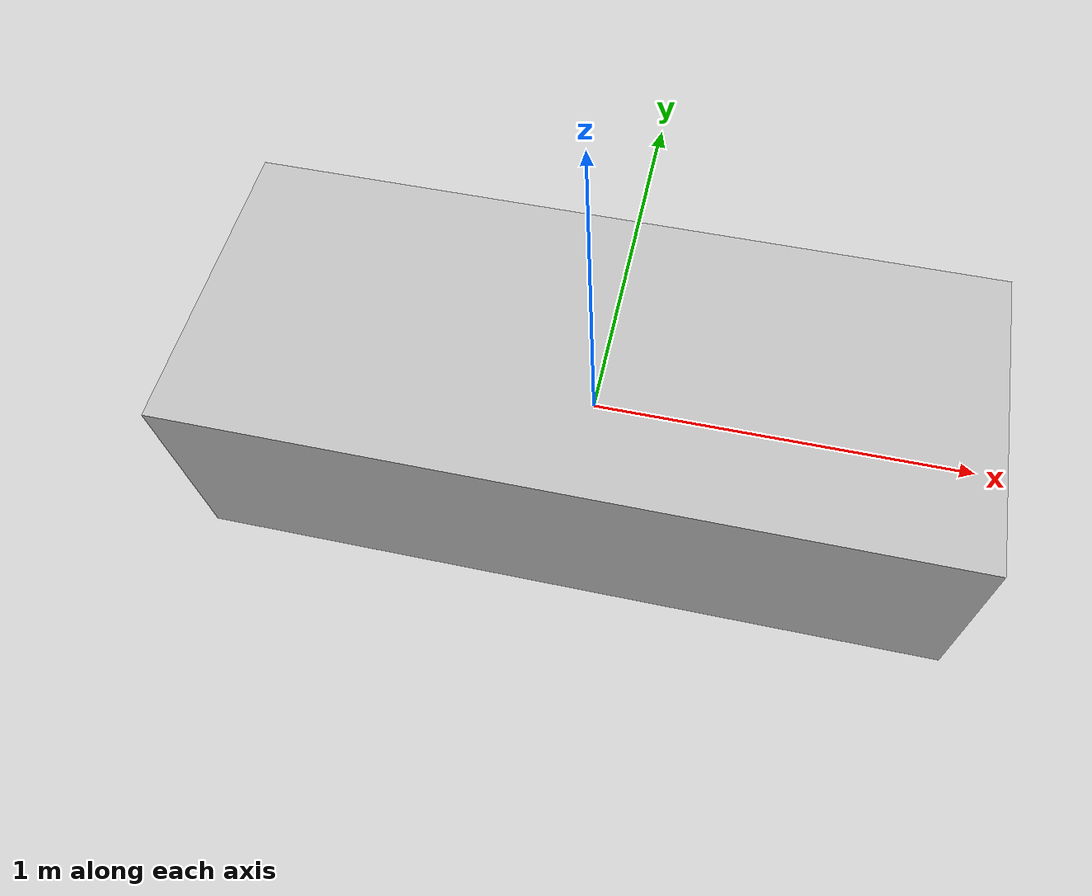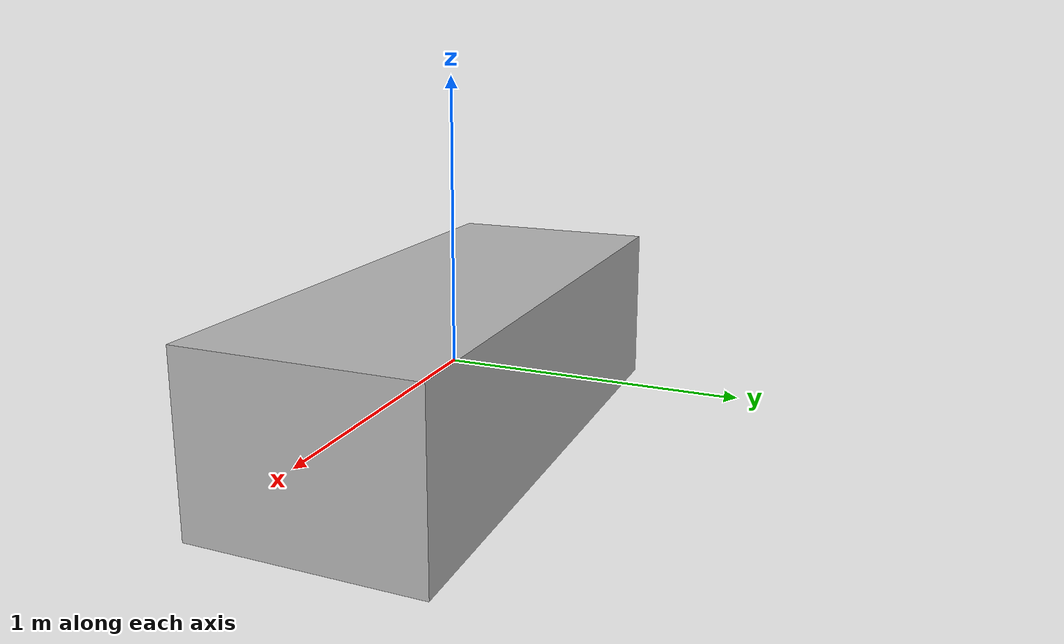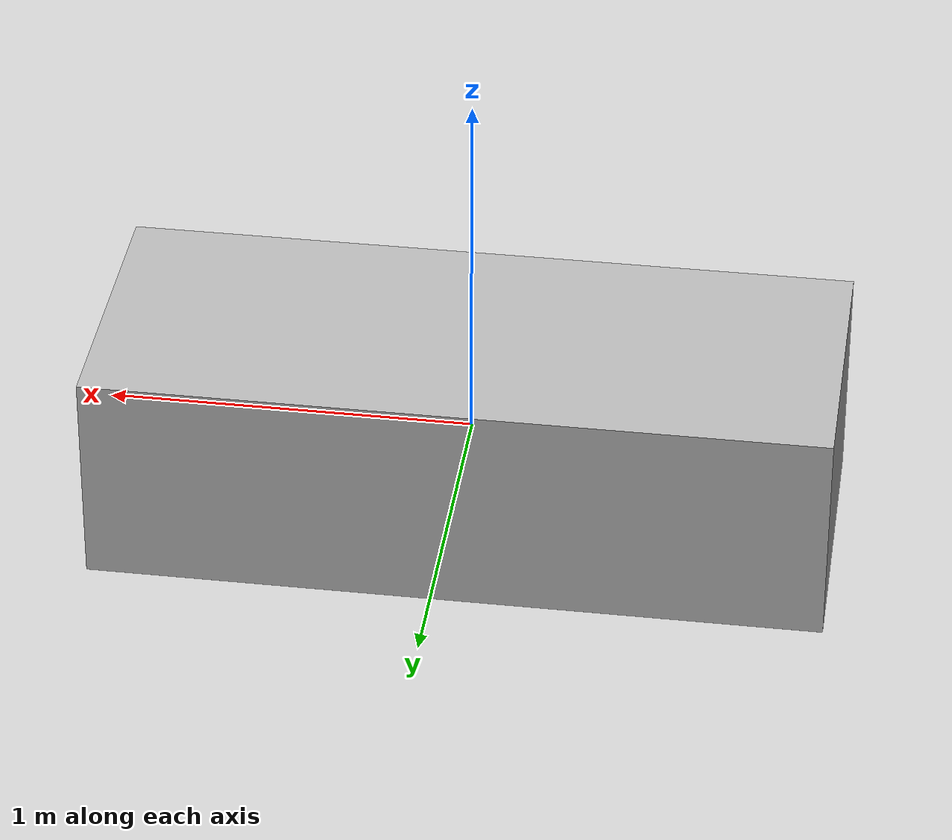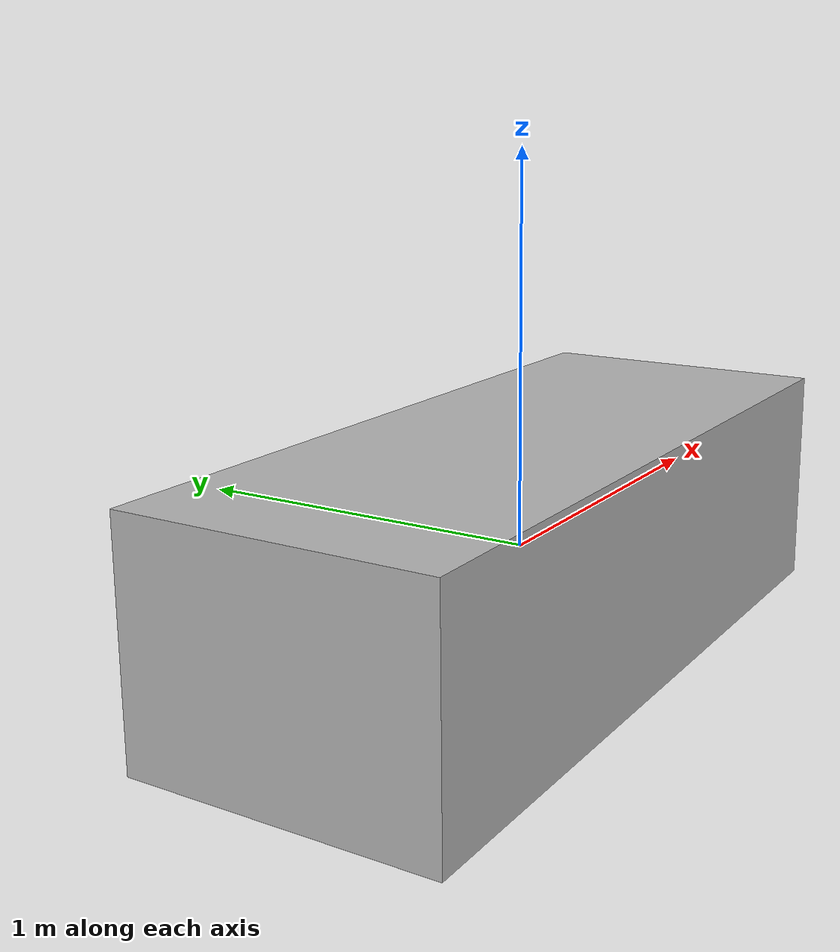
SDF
<?xml version="1.0"?>

<sdf version="1.6">
  <model name="oceansync_auv">

    <static>false</static>

    <pose>0 0 0 0 0 0</pose>

    <link name="base_link">
   <link name="buoyancy_volume">

  <pose>0 0 0 0 0 0</pose>

  <inertial>
    <mass>0.1</mass>
    <inertia>
      <ixx>0.001</ixx>
      <iyy>0.001</iyy>
      <izz>0.001</izz>
      <ixy>0</ixy>
      <ixz>0</ixz>
      <iyz>0</iyz>
    </inertia>
  </inertial>

  <collision name="buoyancy_collision">
    <geometry>
      <box>
        <size>2.0 0.8 0.6</size>
      </box>
    </geometry>
  </collision>

  <visual name="buoyancy_visual">
    <visible>false</visible>
    <geometry>
      <box>
        <size>2.0 0.8 0.6</size>
      </box>
    </geometry>
  </visual>

</link>

<joint name="buoyancy_volume_joint" type="fixed">
  <parent>base_link</parent>
  <child>buoyancy_volume</child>
</joint>
      <inertial>
        <mass>50.0</mass>

        <inertia>
          <ixx>8.0</ixx>
          <iyy>18.0</iyy>
          <izz>20.0</izz>
          <ixy>0.0</ixy>
          <ixz>0.0</ixz>
          <iyz>0.0</iyz>
        </inertia>
      </inertial>

      <!-- Temporary body.
           Later this can be replaced by the final CAD mesh. -->
      <collision name="body_collision">
        <geometry>
          <box>
            <size>2.0 0.8 0.6</size>
          </box>
        </geometry>
      </collision>

      <visual name="body_visual">
        <geometry>
          <box>
            <size>2.0 0.8 0.6</size>
          </box>
        </geometry>
      </visual>

      <!-- IMU                       -->

      <sensor name="imu" type="imu">

        <always_on>true</always_on>
        <update_rate>100</update_rate>

        <plugin
          name="imu_plugin"
          filename="libgazebo_ros_imu_sensor.so">

          <ros>
            <namespace>/oceansync</namespace>
            <remapping>~/out:=imu/data</remapping>
          </ros>

          <frame_name>imu_link</frame_name>

        </plugin>

      </sensor>

      <!-- CAMERA                    -->

      <sensor name="camera" type="camera">

        <pose>1.0 0 0 0 0 0</pose>

        <always_on>true</always_on>
        <update_rate>20</update_rate>

        <camera>

          <horizontal_fov>1.047</horizontal_fov>

          <image>
            <width>640</width>
            <height>480</height>
            <format>R8G8B8</format>
          </image>

          <clip>
            <near>0.1</near>
            <far>50.0</far>
          </clip>

        </camera>

        <plugin
          name="camera_plugin"
          filename="libgazebo_ros_camera.so">

          <ros>
            <namespace>/oceansync</namespace>
            <remapping>image_raw:=camera/image_raw</remapping>
          </ros>

          <camera_name>underwater_camera</camera_name>
          <frame_name>camera_link</frame_name>

        </plugin>

      </sensor>

      <!-- SONAR / RAY SENSOR        -->

      <sensor name="sonar" type="ray">

        <pose>1.0 0 0 0 0 0</pose>

        <always_on>true</always_on>
        <update_rate>10</update_rate>

        <ray>

          <scan>

            <horizontal>
              <samples>181</samples>
              <resolution>1</resolution>
              <min_angle>-1.5708</min_angle>
              <max_angle>1.5708</max_angle>
            </horizontal>

          </scan>

          <range>
            <min>0.2</min>
            <max>50.0</max>
            <resolution>0.05</resolution>
          </range>

        </ray>

        <plugin
          name="sonar_plugin"
          filename="libgazebo_ros_ray_sensor.so">

          <ros>
            <namespace>/oceansync</namespace>
            <remapping>~/out:=sonar/scan</remapping>
          </ros>

          <output_type>sensor_msgs/LaserScan</output_type>
          <frame_name>sonar_link</frame_name>

        </plugin>

      </sensor>

    </link>

    <!-- SENSOR FRAMES             -->

    <link name="imu_link"/>

    <joint name="imu_joint" type="fixed">
      <parent>base_link</parent>
      <child>imu_link</child>
    </joint>

    <link name="camera_link"/>

    <joint name="camera_joint" type="fixed">
      <parent>base_link</parent>
      <child>camera_link</child>
    </joint>

    <link name="sonar_link"/>

    <joint name="sonar_joint" type="fixed">
      <parent>base_link</parent>
      <child>sonar_link</child>
    </joint>

    <!-- BUOYANCY                  -->

  </model>
</sdf>
